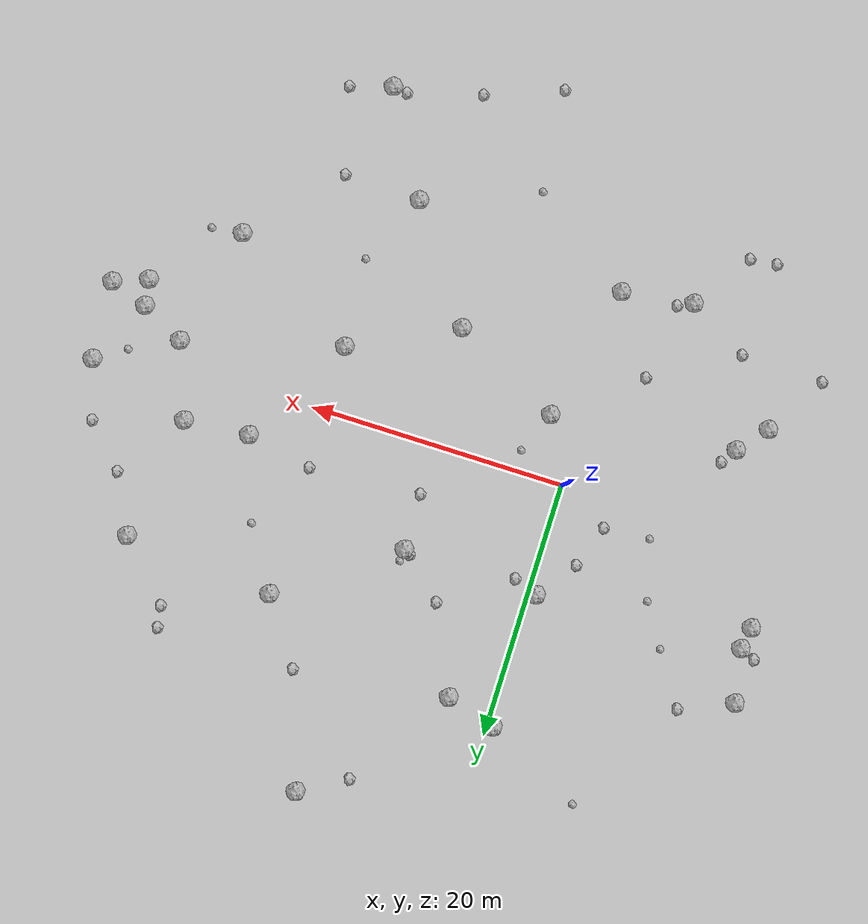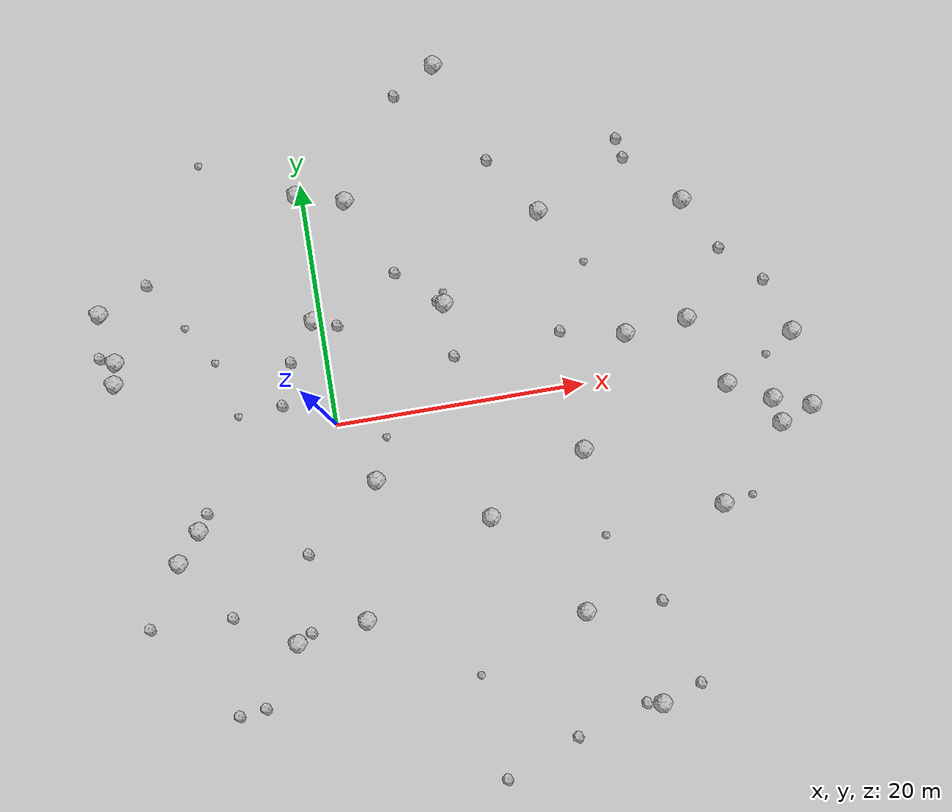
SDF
<sdf version="1.6">
 <world name="default">
  <include><uri>model://custom_ground</uri></include>
  <include><uri>model://sun</uri></include>
  <model name="rock1_0_0">
   <include><uri>model://rock1</uri><pose>10.02849448124853 8.230612105566998 0.5 0 0 0</pose></include>
  </model>
  <model name="rock1_0_1">
   <include><uri>model://rock1</uri><pose>29.072980740950804 3.853172992329739 0.5 0 0 0</pose></include>
  </model>
  <model name="rock1_0_2">
   <include><uri>model://rock1</uri><pose>37.18833192868596 1.4463406213011858 0.5 0 0 0</pose></include>
  </model>
  <model name="rock1_0_3">
   <include><uri>model://rock1</uri><pose>29.139050827073717 -11.189162614460031 0.5 0 0 0</pose></include>
  </model>
  <model name="rock1_0_4">
   <include><uri>model://rock1</uri><pose>10.877361282351853 -9.260265700012983 0.5 0 0 0</pose></include>
  </model>
  <model name="rock1_0_5">
   <include><uri>model://rock1</uri><pose>23.99170106523929 3.4412377452945577 0.5 0 0 0</pose></include>
  </model>
  <model name="rock1_0_6">
   <include><uri>model://rock1</uri><pose>-16.69601433414578 7.774357570519847 0.5 0 0 0</pose></include>
  </model>
  <model name="rock1_0_7">
   <include><uri>model://rock1</uri><pose>19.02783818439366 -5.210985564855072 0.5 0 0 0</pose></include>
  </model>
  <model name="rock1_0_8">
   <include><uri>model://rock1</uri><pose>-11.911545173617988 -6.575143413329606 0.5 0 0 0</pose></include>
  </model>
  <model name="rock1_0_9">
   <include><uri>model://rock1</uri><pose>3.442605049174638 17.95864992421498 0.5 0 0 0</pose></include>
  </model>
  <model name="rock1_0_10">
   <include><uri>model://rock1</uri><pose>34.9095106811757 -5.648890755054413 0.5 0 0 0</pose></include>
  </model>
  <model name="rock1_0_11">
   <include><uri>model://rock1</uri><pose>16.94240063646661 -17.660134640613805 0.5 0 0 0</pose></include>
  </model>
  <model name="rock1_0_12">
   <include><uri>model://rock1</uri><pose>2.4295444936437534 -4.927172542186604 0.5 0 0 0</pose></include>
  </model>
  <model name="rock1_0_13">
   <include><uri>model://rock1</uri><pose>18.853045679664795 14.532919669222217 0.5 0 0 0</pose></include>
  </model>
  <model name="rock1_0_14">
   <include><uri>model://rock1</uri><pose>30.555545489238597 13.542228266071163 0.5 0 0 0</pose></include>
  </model>
  <model name="rock1_0_15">
   <include><uri>model://rock1</uri><pose>0.03788783109249749 -15.543942105232759 0.5 0 0 0</pose></include>
  </model>
  <model name="rock1_0_16">
   <include><uri>model://rock1</uri><pose>31.228114719547733 -1.88221025846374 0.5 0 0 0</pose></include>
  </model>
  <model name="rock1_0_17">
   <include><uri>model://rock1</uri><pose>37.54663800356577 -4.662823276522694 0.5 0 0 0</pose></include>
  </model>
  <model name="rock1_0_18">
   <include><uri>model://rock1</uri><pose>-0.5862028521355569 8.540230338428941 0.5 0 0 0</pose></include>
  </model>
  <model name="rock1_0_19">
   <include><uri>model://rock1</uri><pose>-16.986201248152003 6.037516260184873 0.5 0 0 0</pose></include>
  </model>
  <model name="rock1_0_20">
   <include><uri>model://rock1</uri><pose>21.47227707232578 -25.43353209367471 0.5 0 0 0</pose></include>
  </model>
  <model name="rock1_0_21">
   <include><uri>model://rock1</uri><pose>12.429395298147845 28.227622201993952 0.5 0 0 0</pose></include>
  </model>
  <model name="rock1_0_22">
   <include><uri>model://rock1</uri><pose>-0.42065306089349264 19.082971695363298 0.5 0 0 0</pose></include>
  </model>
  <model name="rock1_0_23">
   <include><uri>model://rock1</uri><pose>34.58711269483153 -3.6417299478127667 0.5 0 0 0</pose></include>
  </model>
  <model name="rock1_0_24">
   <include><uri>model://rock1</uri><pose>-5.522741122187103 -16.36637412457866 0.5 0 0 0</pose></include>
  </model>
  <model name="rock1_0_25">
   <include><uri>model://rock1</uri><pose>-17.47697909781357 11.865102455572206 0.5 0 0 0</pose></include>
  </model>
  <model name="rock1_0_26">
   <include><uri>model://rock1</uri><pose>-13.799489983465884 -8.817173894947715 0.5 0 0 0</pose></include>
  </model>
  <model name="rock2_0_0">
   <include><uri>model://rock2</uri><pose>32.75345804217651 9.142630216231879 0.3 0 0 0</pose></include>
  </model>
  <model name="rock2_0_1">
   <include><uri>model://rock2</uri><pose>-8.6901231026007 -20.875930940380837 0.3 0 0 0</pose></include>
  </model>
  <model name="rock2_0_2">
   <include><uri>model://rock2</uri><pose>9.501455340577543 8.51916947199959 0.3 0 0 0</pose></include>
  </model>
  <model name="rock2_0_3">
   <include><uri>model://rock2</uri><pose>-16.725355553961688 -13.471528329047405 0.3 0 0 0</pose></include>
  </model>
  <model name="rock2_0_4">
   <include><uri>model://rock2</uri><pose>-17.942179385416647 8.33969438709245 0.3 0 0 0</pose></include>
  </model>
  <model name="rock2_0_5">
   <include><uri>model://rock2</uri><pose>6.472980094749673 11.408802322493706 0.3 0 0 0</pose></include>
  </model>
  <model name="rock2_0_6">
   <include><uri>model://rock2</uri><pose>26.20460106448713 19.5752815128941 0.3 0 0 0</pose></include>
  </model>
  <model name="rock2_0_7">
   <include><uri>model://rock2</uri><pose>-4.386717585284547 -15.780583853661891 0.3 0 0 0</pose></include>
  </model>
  <model name="rock2_0_8">
   <include><uri>model://rock2</uri><pose>14.62754889392641 -26.887484661231365 0.3 0 0 0</pose></include>
  </model>
  <model name="rock2_0_9">
   <include><uri>model://rock2</uri><pose>-10.774979831634345 -21.10434604974025 0.3 0 0 0</pose></include>
  </model>
  <model name="rock2_0_10">
   <include><uri>model://rock2</uri><pose>35.781661825509104 5.97039568708108 0.3 0 0 0</pose></include>
  </model>
  <model name="rock2_0_11">
   <include><uri>model://rock2</uri><pose>-4.046736252257512 2.1775038847010606 0.3 0 0 0</pose></include>
  </model>
  <model name="rock2_0_12">
   <include><uri>model://rock2</uri><pose>10.10468987957714 3.8906368446104835 0.3 0 0 0</pose></include>
  </model>
  <model name="rock2_0_13">
   <include><uri>model://rock2</uri><pose>20.30247014165498 -25.271762356185107 0.3 0 0 0</pose></include>
  </model>
  <model name="rock2_0_14">
   <include><uri>model://rock2</uri><pose>26.472690182559724 17.909671301731635 0.3 0 0 0</pose></include>
  </model>
  <model name="rock2_0_15">
   <include><uri>model://rock2</uri><pose>1.2463407762721381 7.884766289507766 0.3 0 0 0</pose></include>
  </model>
  <model name="rock2_0_16">
   <include><uri>model://rock2</uri><pose>22.93668898763847 -17.830239449443795 0.3 0 0 0</pose></include>
  </model>
  <model name="rock2_0_17">
   <include><uri>model://rock2</uri><pose>-13.46978765058756 13.66811421855656 0.3 0 0 0</pose></include>
  </model>
  <model name="rock2_0_18">
   <include><uri>model://rock2</uri><pose>-11.137351484062652 -5.312528715028346 0.3 0 0 0</pose></include>
  </model>
  <model name="rock2_0_19">
   <include><uri>model://rock2</uri><pose>8.767701904453123 26.178180712729855 0.3 0 0 0</pose></include>
  </model>
  <model name="rock2_0_20">
   <include><uri>model://rock2</uri><pose>18.825722416340184 4.489673039403904 0.3 0 0 0</pose></include>
  </model>
  <model name="rock2_0_21">
   <include><uri>model://rock2</uri><pose>8.754201747613358 -29.104795411066192 0.3 0 0 0</pose></include>
  </model>
  <model name="rock2_0_22">
   <include><uri>model://rock2</uri><pose>24.69523028487155 -24.45262175067485 0.3 0 0 0</pose></include>
  </model>
  <model name="rock2_0_23">
   <include><uri>model://rock2</uri><pose>15.402537630776465 19.51663461835126 0.3 0 0 0</pose></include>
  </model>
  <model name="rock2_0_24">
   <include><uri>model://rock2</uri><pose>-10.26478314683471 -13.644674524630528 0.3 0 0 0</pose></include>
  </model>
  <model name="rock2_0_25">
   <include><uri>model://rock2</uri><pose>-3.735256096366353 -9.773385662452615 0.3 0 0 0</pose></include>
  </model>
  <model name="rock2_0_26">
   <include><uri>model://rock2</uri><pose>-2.890756414065624 5.521671850487756 0.3 0 0 0</pose></include>
  </model>
  <model name="rock3_0_0">
   <include><uri>model://rock3</uri><pose>-10.910516607369598 9.66917152334149 0.2 0 0 0</pose></include>
  </model>
  <model name="rock3_0_1">
   <include><uri>model://rock3</uri><pose>19.50048530383718 -12.153488468413112 0.2 0 0 0</pose></include>
  </model>
  <model name="rock3_0_2">
   <include><uri>model://rock3</uri><pose>8.027077042627447 -21.147023526254006 0.2 0 0 0</pose></include>
  </model>
  <model name="rock3_0_3">
   <include><uri>model://rock3</uri><pose>-8.00442691393849 22.91551461922589 0.2 0 0 0</pose></include>
  </model>
  <model name="rock3_0_4">
   <include><uri>model://rock3</uri><pose>-7.661107541839501 1.8835954641529504 0.2 0 0 0</pose></include>
  </model>
  <model name="rock3_0_5">
   <include><uri>model://rock3</uri><pose>10.078123406508858 9.185884572666659 0.2 0 0 0</pose></include>
  </model>
  <model name="rock3_0_6">
   <include><uri>model://rock3</uri><pose>34.80303315938878 -0.07577926186385398 0.2 0 0 0</pose></include>
  </model>
  <model name="rock3_0_7">
   <include><uri>model://rock3</uri><pose>31.508142798898206 -10.919470580092458 0.2 0 0 0</pose></include>
  </model>
  <model name="rock3_0_8">
   <include><uri>model://rock3</uri><pose>3.72571749336241 -1.6660025100618086 0.2 0 0 0</pose></include>
  </model>
  <model name="rock3_0_9">
   <include><uri>model://rock3</uri><pose>-8.894872364115296 6.47839081857645 0.2 0 0 0</pose></include>
  </model>
  <model name="rock3_0_10">
   <include><uri>model://rock3</uri><pose>21.752884415708223 9.806362944358042 0.2 0 0 0</pose></include>
  </model>
 </world>
</sdf>
